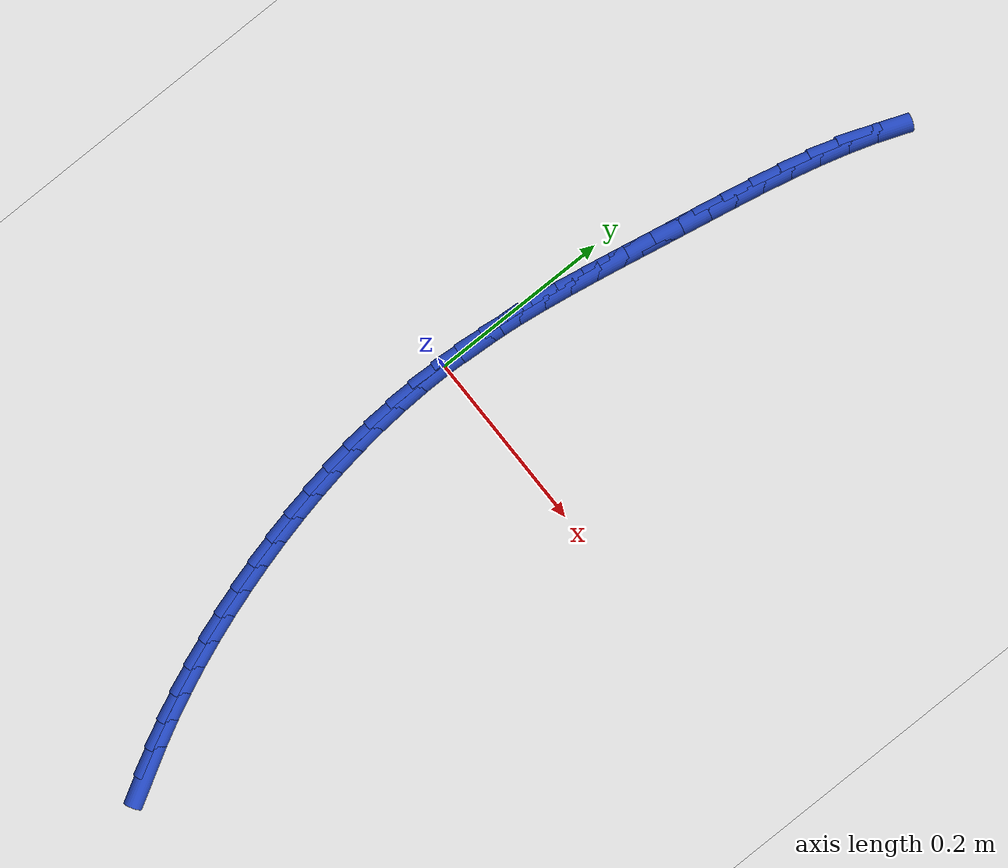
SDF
<sdf version="1.6">
 <world name="default">
  <model name="ground_plane">
   <static>1</static>
   <link name="link">
    <collision name="collision">
     <geometry><plane><normal>0 0 1</normal><size>100 100</size></plane></geometry>
     <surface><friction><ode><mu>100</mu><mu2>50</mu2></ode></friction></surface>
    </collision>
    <visual name="visual">
     <cast_shadows>0</cast_shadows>
     <geometry><plane><normal>0 0 1</normal><size>100 100</size></plane></geometry>
     <material>
      <script><uri>file://media/materials/scripts/gazebo.material</uri><name>Gazebo/WhiteGlow</name></script>
     </material>
    </visual>
   </link>
  </model>
  <model name="line">
   <link name="link_0">
    <pose>-6.938893903907228e-18 4.163336342344337e-17 0.01 0 1.57 1.5301401341915055</pose>
    <collision name="collision">
     <geometry><cylinder><radius>0.01</radius><length>0.08</length></cylinder></geometry>
    </collision>
    <visual name="visual">
     <material>
      <script><name>Gazebo/Blue</name><uri>file://media/materials/scripts/gazebo.material</uri></script>
     </material>
     <geometry><cylinder><radius>0.01</radius><length>0.08</length></cylinder></geometry>
    </visual>
   </link>
   <link name="link_1">
    <pose>0.0012197291656639655 0.029984535512374955 0.01 0 1.57 1.4936520319378765</pose>
    <collision name="collision">
     <geometry><cylinder><radius>0.01</radius><length>0.08</length></cylinder></geometry>
    </collision>
    <visual name="visual">
     <material>
      <script><name>Gazebo/Blue</name><uri>file://media/materials/scripts/gazebo.material</uri></script>
     </material>
     <geometry><cylinder><radius>0.01</radius><length>0.08</length></cylinder></geometry>
    </visual>
   </link>
   <link name="link_2">
    <pose>0.0035273743602338486 0.059838533094403935 0.01 0 1.57 1.461882396757842</pose>
    <collision name="collision">
     <geometry><cylinder><radius>0.01</radius><length>0.08</length></cylinder></geometry>
    </collision>
    <visual name="visual">
     <material>
      <script><name>Gazebo/Blue</name><uri>file://media/materials/scripts/gazebo.material</uri></script>
     </material>
     <geometry><cylinder><radius>0.01</radius><length>0.08</length></cylinder></geometry>
    </visual>
   </link>
   <link name="link_3">
    <pose>0.006787235103199352 0.08965070479935273 0.01 0 1.57 1.4351145404454468</pose>
    <collision name="collision">
     <geometry><cylinder><radius>0.01</radius><length>0.08</length></cylinder></geometry>
    </collision>
    <visual name="visual">
     <material>
      <script><name>Gazebo/Blue</name><uri>file://media/materials/scripts/gazebo.material</uri></script>
     </material>
     <geometry><cylinder><radius>0.01</radius><length>0.08</length></cylinder></geometry>
    </visual>
   </link>
   <link name="link_4">
    <pose>0.010863610914050189 0.11950976268048714 0.01 0 1.57 1.4135051827415441</pose>
    <collision name="collision">
     <geometry><cylinder><radius>0.01</radius><length>0.08</length></cylinder></geometry>
    </collision>
    <visual name="visual">
     <material>
      <script><name>Gazebo/Blue</name><uri>file://media/materials/scripts/gazebo.material</uri></script>
     </material>
     <geometry><cylinder><radius>0.01</radius><length>0.08</length></cylinder></geometry>
    </visual>
   </link>
   <link name="link_5">
    <pose>0.015620801312276082 0.14950441879107293 0.01 0 1.57 1.3971016461890813</pose>
    <collision name="collision">
     <geometry><cylinder><radius>0.01</radius><length>0.08</length></cylinder></geometry>
    </collision>
    <visual name="visual">
     <material>
      <script><name>Gazebo/Blue</name><uri>file://media/materials/scripts/gazebo.material</uri></script>
     </material>
     <geometry><cylinder><radius>0.01</radius><length>0.08</length></cylinder></geometry>
    </visual>
   </link>
   <link name="link_6">
    <pose>0.020923105817366727 0.17972338518437583 0.01 0 1.57 1.3858606724988032</pose>
    <collision name="collision">
     <geometry><cylinder><radius>0.01</radius><length>0.08</length></cylinder></geometry>
    </collision>
    <visual name="visual">
     <material>
      <script><name>Gazebo/Blue</name><uri>file://media/materials/scripts/gazebo.material</uri></script>
     </material>
     <geometry><cylinder><radius>0.01</radius><length>0.08</length></cylinder></geometry>
    </visual>
   </link>
   <link name="link_7">
    <pose>0.02663482394881185 0.21025537391366161 0.01 0 1.57 1.3796661152563492</pose>
    <collision name="collision">
     <geometry><cylinder><radius>0.01</radius><length>0.08</length></cylinder></geometry>
    </collision>
    <visual name="visual">
     <material>
      <script><name>Gazebo/Blue</name><uri>file://media/materials/scripts/gazebo.material</uri></script>
     </material>
     <geometry><cylinder><radius>0.01</radius><length>0.08</length></cylinder></geometry>
    </visual>
   </link>
   <link name="link_8">
    <pose>0.03262025522610116 0.24118909703219615 0.01 0 1.57 1.3783439307562038</pose>
    <collision name="collision">
     <geometry><cylinder><radius>0.01</radius><length>0.08</length></cylinder></geometry>
    </collision>
    <visual name="visual">
     <material>
      <script><name>Gazebo/Blue</name><uri>file://media/materials/scripts/gazebo.material</uri></script>
     </material>
     <geometry><cylinder><radius>0.01</radius><length>0.08</length></cylinder></geometry>
    </visual>
   </link>
   <link name="link_9">
    <pose>0.038743699168724374 0.27261326659324514 0.01 0 1.57 1.3809345792185361</pose>
    <collision name="collision">
     <geometry><cylinder><radius>0.01</radius><length>0.08</length></cylinder></geometry>
    </collision>
    <visual name="visual">
     <material>
      <script><name>Gazebo/Blue</name><uri>file://media/materials/scripts/gazebo.material</uri></script>
     </material>
     <geometry><cylinder><radius>0.01</radius><length>0.08</length></cylinder></geometry>
    </visual>
   </link>
   <link name="link_10">
    <pose>0.04488989903704771 0.304595328160182 0.01 0 1.57 1.3800619963508682</pose>
    <collision name="collision">
     <geometry><cylinder><radius>0.01</radius><length>0.08</length></cylinder></geometry>
    </collision>
    <visual name="visual">
     <material>
      <script><name>Gazebo/Blue</name><uri>file://media/materials/scripts/gazebo.material</uri></script>
     </material>
     <geometry><cylinder><radius>0.01</radius><length>0.08</length></cylinder></geometry>
    </visual>
   </link>
   <link name="link_11">
    <pose>0.051145275253468625 0.33699293372906 0.01 0 1.57 1.3717603807942091</pose>
    <collision name="collision">
     <geometry><cylinder><radius>0.01</radius><length>0.08</length></cylinder></geometry>
    </collision>
    <visual name="visual">
     <material>
      <script><name>Gazebo/Blue</name><uri>file://media/materials/scripts/gazebo.material</uri></script>
     </material>
     <geometry><cylinder><radius>0.01</radius><length>0.08</length></cylinder></geometry>
    </visual>
   </link>
   <link name="link_12">
    <pose>0.057711093119129815 0.3695442685374868 0.01 0 1.57 1.3559623379499974</pose>
    <collision name="collision">
     <geometry><cylinder><radius>0.01</radius><length>0.08</length></cylinder></geometry>
    </collision>
    <visual name="visual">
     <material>
      <script><name>Gazebo/Blue</name><uri>file://media/materials/scripts/gazebo.material</uri></script>
     </material>
     <geometry><cylinder><radius>0.01</radius><length>0.08</length></cylinder></geometry>
    </visual>
   </link>
   <link name="link_13">
    <pose>0.06478994972328184 0.40198613243775777 0.01 0 1.57 1.33236724914427</pose>
    <collision name="collision">
     <geometry><cylinder><radius>0.01</radius><length>0.08</length></cylinder></geometry>
    </collision>
    <visual name="visual">
     <material>
      <script><name>Gazebo/Blue</name><uri>file://media/materials/scripts/gazebo.material</uri></script>
     </material>
     <geometry><cylinder><radius>0.01</radius><length>0.08</length></cylinder></geometry>
    </visual>
   </link>
   <link name="link_14">
    <pose>0.07258444215517523 0.4340553252821681 0.01 0 1.57 1.3004034182927375</pose>
    <collision name="collision">
     <geometry><cylinder><radius>0.01</radius><length>0.08</length></cylinder></geometry>
    </collision>
    <visual name="visual">
     <material>
      <script><name>Gazebo/Blue</name><uri>file://media/materials/scripts/gazebo.material</uri></script>
     </material>
     <geometry><cylinder><radius>0.01</radius><length>0.08</length></cylinder></geometry>
    </visual>
   </link>
   <link name="link_15">
    <pose>0.08129716750406062 0.4654886469230136 0.01 0 1.57 1.2592349097399569</pose>
    <collision name="collision">
     <geometry><cylinder><radius>0.01</radius><length>0.08</length></cylinder></geometry>
    </collision>
    <visual name="visual">
     <material>
      <script><name>Gazebo/Blue</name><uri>file://media/materials/scripts/gazebo.material</uri></script>
     </material>
     <geometry><cylinder><radius>0.01</radius><length>0.08</length></cylinder></geometry>
    </visual>
   </link>
   <link name="link_16">
    <pose>0.09113072285918855 0.4960228972125896 0.01 0 1.57 1.2077793161824977</pose>
    <collision name="collision">
     <geometry><cylinder><radius>0.01</radius><length>0.08</length></cylinder></geometry>
    </collision>
    <visual name="visual">
     <material>
      <script><name>Gazebo/Blue</name><uri>file://media/materials/scripts/gazebo.material</uri></script>
     </material>
     <geometry><cylinder><radius>0.01</radius><length>0.08</length></cylinder></geometry>
    </visual>
   </link>
   <link name="link_203">
    <pose>0.13289891783474705 -0.5000658593473052 0.01 0 1.57 -1.0547829307814616</pose>
    <collision name="collision">
     <geometry><cylinder><radius>0.01</radius><length>0.08</length></cylinder></geometry>
    </collision>
    <visual name="visual">
     <material>
      <script><name>Gazebo/Blue</name><uri>file://media/materials/scripts/gazebo.material</uri></script>
     </material>
     <geometry><cylinder><radius>0.01</radius><length>0.08</length></cylinder></geometry>
    </visual>
   </link>
   <link name="link_204">
    <pose>0.11779850921800389 -0.4734469063716308 0.01 0 1.57 -1.0924536653139312</pose>
    <collision name="collision">
     <geometry><cylinder><radius>0.01</radius><length>0.08</length></cylinder></geometry>
    </collision>
    <visual name="visual">
     <material>
      <script><name>Gazebo/Blue</name><uri>file://media/materials/scripts/gazebo.material</uri></script>
     </material>
     <geometry><cylinder><radius>0.01</radius><length>0.08</length></cylinder></geometry>
    </visual>
   </link>
   <link name="link_205">
    <pose>0.10368834273438884 -0.44623379183603934 0.01 0 1.57 -1.1283526724137376</pose>
    <collision name="collision">
     <geometry><cylinder><radius>0.01</radius><length>0.08</length></cylinder></geometry>
    </collision>
    <visual name="visual">
     <material>
      <script><name>Gazebo/Blue</name><uri>file://media/materials/scripts/gazebo.material</uri></script>
     </material>
     <geometry><cylinder><radius>0.01</radius><length>0.08</length></cylinder></geometry>
    </visual>
   </link>
   <link name="link_206">
    <pose>0.09053681999105813 -0.41847444806595985 0.01 0 1.57 -1.162499443503172</pose>
    <collision name="collision">
     <geometry><cylinder><radius>0.01</radius><length>0.08</length></cylinder></geometry>
    </collision>
    <visual name="visual">
     <material>
      <script><name>Gazebo/Blue</name><uri>file://media/materials/scripts/gazebo.material</uri></script>
     </material>
     <geometry><cylinder><radius>0.01</radius><length>0.08</length></cylinder></geometry>
    </visual>
   </link>
   <link name="link_207">
    <pose>0.07831234259516782 -0.39021680738682096 0.01 0 1.57 -1.1949281065011206</pose>
    <collision name="collision">
     <geometry><cylinder><radius>0.01</radius><length>0.08</length></cylinder></geometry>
    </collision>
    <visual name="visual">
     <material>
      <script><name>Gazebo/Blue</name><uri>file://media/materials/scripts/gazebo.material</uri></script>
     </material>
     <geometry><cylinder><radius>0.01</radius><length>0.08</length></cylinder></geometry>
    </visual>
   </link>
   <link name="link_208">
    <pose>0.06698331215387475 -0.36150880212405295 0.01 0 1.57 -1.2256840721471727</pose>
    <collision name="collision">
     <geometry><cylinder><radius>0.01</radius><length>0.08</length></cylinder></geometry>
    </collision>
    <visual name="visual">
     <material>
      <script><name>Gazebo/Blue</name><uri>file://media/materials/scripts/gazebo.material</uri></script>
     </material>
     <geometry><cylinder><radius>0.01</radius><length>0.08</length></cylinder></geometry>
    </visual>
   </link>
   <link name="link_209">
    <pose>0.05651813027433489 -0.33239836460308425 0.01 0 1.57 -1.254821035645289</pose>
    <collision name="collision">
     <geometry><cylinder><radius>0.01</radius><length>0.08</length></cylinder></geometry>
    </collision>
    <visual name="visual">
     <material>
      <script><name>Gazebo/Blue</name><uri>file://media/materials/scripts/gazebo.material</uri></script>
     </material>
     <geometry><cylinder><radius>0.01</radius><length>0.08</length></cylinder></geometry>
    </visual>
   </link>
   <link name="link_210">
    <pose>0.04688519856370449 -0.30293342714934396 0.01 0 1.57 -1.282407863607305</pose>
    <collision name="collision">
     <geometry><cylinder><radius>0.01</radius><length>0.08</length></cylinder></geometry>
    </collision>
    <visual name="visual">
     <material>
      <script><name>Gazebo/Blue</name><uri>file://media/materials/scripts/gazebo.material</uri></script>
     </material>
     <geometry><cylinder><radius>0.01</radius><length>0.08</length></cylinder></geometry>
    </visual>
   </link>
   <link name="link_211">
    <pose>0.03805323187025779 -0.2731619417972595 0.01 0 1.57 -1.3093327130998529</pose>
    <collision name="collision">
     <geometry><cylinder><radius>0.01</radius><length>0.08</length></cylinder></geometry>
    </collision>
    <visual name="visual">
     <material>
      <script><name>Gazebo/Blue</name><uri>file://media/materials/scripts/gazebo.material</uri></script>
     </material>
     <geometry><cylinder><radius>0.01</radius><length>0.08</length></cylinder></geometry>
    </visual>
   </link>
   <link name="link_212">
    <pose>0.030017956950541286 -0.24313356015907978 0.01 0 1.57 -1.337141633057352</pose>
    <collision name="collision">
     <geometry><cylinder><radius>0.01</radius><length>0.08</length></cylinder></geometry>
    </collision>
    <visual name="visual">
     <material>
      <script><name>Gazebo/Blue</name><uri>file://media/materials/scripts/gazebo.material</uri></script>
     </material>
     <geometry><cylinder><radius>0.01</radius><length>0.08</length></cylinder></geometry>
    </visual>
   </link>
   <link name="link_213">
    <pose>0.022822535719386527 -0.21290091844711376 0.01 0 1.57 -1.3661074513147042</pose>
    <collision name="collision">
     <geometry><cylinder><radius>0.01</radius><length>0.08</length></cylinder></geometry>
    </collision>
    <visual name="visual">
     <material>
      <script><name>Gazebo/Blue</name><uri>file://media/materials/scripts/gazebo.material</uri></script>
     </material>
     <geometry><cylinder><radius>0.01</radius><length>0.08</length></cylinder></geometry>
    </visual>
   </link>
   <link name="link_214">
    <pose>0.01651493852940013 -0.18251695541853544 0.01 0 1.57 -1.3963606720705826</pose>
    <collision name="collision">
     <geometry><cylinder><radius>0.01</radius><length>0.08</length></cylinder></geometry>
    </collision>
    <visual name="visual">
     <material>
      <script><name>Gazebo/Blue</name><uri>file://media/materials/scripts/gazebo.material</uri></script>
     </material>
     <geometry><cylinder><radius>0.01</radius><length>0.08</length></cylinder></geometry>
    </visual>
   </link>
   <link name="link_215">
    <pose>0.011143135733188933 -0.15203460983051995 0.01 0 1.57 -1.4280350265200479</pose>
    <collision name="collision">
     <geometry><cylinder><radius>0.01</radius><length>0.08</length></cylinder></geometry>
    </collision>
    <visual name="visual">
     <material>
      <script><name>Gazebo/Blue</name><uri>file://media/materials/scripts/gazebo.material</uri></script>
     </material>
     <geometry><cylinder><radius>0.01</radius><length>0.08</length></cylinder></geometry>
    </visual>
   </link>
   <link name="link_216">
    <pose>0.006755097683359663 -0.12150682044024108 0.01 0 1.57 -1.4612668891262455</pose>
    <collision name="collision">
     <geometry><cylinder><radius>0.01</radius><length>0.08</length></cylinder></geometry>
    </collision>
    <visual name="visual">
     <material>
      <script><name>Gazebo/Blue</name><uri>file://media/materials/scripts/gazebo.material</uri></script>
     </material>
     <geometry><cylinder><radius>0.01</radius><length>0.08</length></cylinder></geometry>
    </visual>
   </link>
   <link name="link_217">
    <pose>0.0033987947325193747 -0.09098652600487532 0.01 0 1.57 -1.4961941316733824</pose>
    <collision name="collision">
     <geometry><cylinder><radius>0.01</radius><length>0.08</length></cylinder></geometry>
    </collision>
    <visual name="visual">
     <material>
      <script><name>Gazebo/Blue</name><uri>file://media/materials/scripts/gazebo.material</uri></script>
     </material>
     <geometry><cylinder><radius>0.01</radius><length>0.08</length></cylinder></geometry>
    </visual>
   </link>
   <link name="link_218">
    <pose>0.0011221972332747738 -0.06052666528159673 0.01 0 1.57 -1.5329542804071405</pose>
    <collision name="collision">
     <geometry><cylinder><radius>0.01</radius><length>0.08</length></cylinder></geometry>
    </collision>
    <visual name="visual">
     <material>
      <script><name>Gazebo/Blue</name><uri>file://media/materials/scripts/gazebo.material</uri></script>
     </material>
     <geometry><cylinder><radius>0.01</radius><length>0.08</length></cylinder></geometry>
    </visual>
   </link>
   <link name="link_219">
    <pose>-2.6724461767303753e-05 -0.030180177027580198 0.01 0 1.57 1.5699108298424453</pose>
    <collision name="collision">
     <geometry><cylinder><radius>0.01</radius><length>0.08</length></cylinder></geometry>
    </collision>
    <visual name="visual">
     <material>
      <script><name>Gazebo/Blue</name><uri>file://media/materials/scripts/gazebo.material</uri></script>
     </material>
     <geometry><cylinder><radius>0.01</radius><length>0.08</length></cylinder></geometry>
    </visual>
   </link>
   <link name="link_220">
    <pose>-1.474514954580286e-17 2.42861286636753e-16 0.01 0 1.57 1.5290881424784877</pose>
    <collision name="collision">
     <geometry><cylinder><radius>0.01</radius><length>0.08</length></cylinder></geometry>
    </collision>
    <visual name="visual">
     <material>
      <script><name>Gazebo/Blue</name><uri>file://media/materials/scripts/gazebo.material</uri></script>
     </material>
     <geometry><cylinder><radius>0.01</radius><length>0.08</length></cylinder></geometry>
    </visual>
   </link>
   <link name="link_221">
    <pose>0.0012503409711834296 0.0299609270439675 0.01 0 1.57 1.4860541574566153</pose>
    <collision name="collision">
     <geometry><cylinder><radius>0.01</radius><length>0.08</length></cylinder></geometry>
    </collision>
    <visual name="visual">
     <material>
      <script><name>Gazebo/Blue</name><uri>file://media/materials/scripts/gazebo.material</uri></script>
     </material>
     <geometry><cylinder><radius>0.01</radius><length>0.08</length></cylinder></geometry>
    </visual>
   </link>
   <link name="link_222">
    <pose>0.003772268804389977 0.05964966534714966 0.01 0 1.57 1.5076400300579647</pose>
    <collision name="collision">
     <geometry><cylinder><radius>0.01</radius><length>0.08</length></cylinder></geometry>
    </collision>
    <visual name="visual">
     <material>
      <script><name>Gazebo/Blue</name><uri>file://media/materials/scripts/gazebo.material</uri></script>
     </material>
     <geometry><cylinder><radius>0.01</radius><length>0.08</length></cylinder></geometry>
    </visual>
   </link>
  </model>
 </world>
</sdf>
